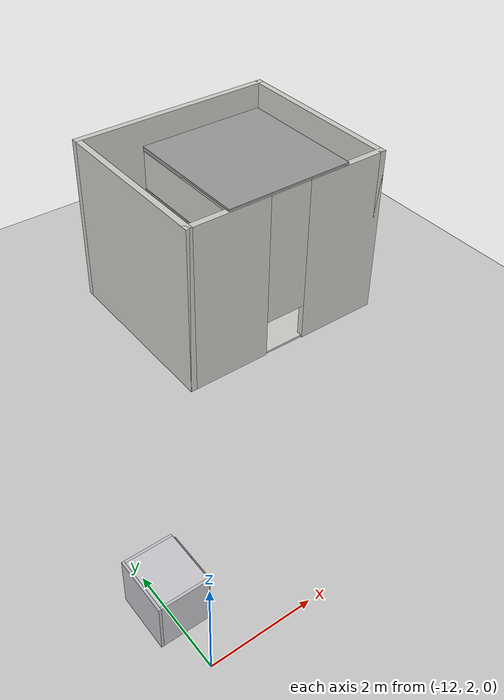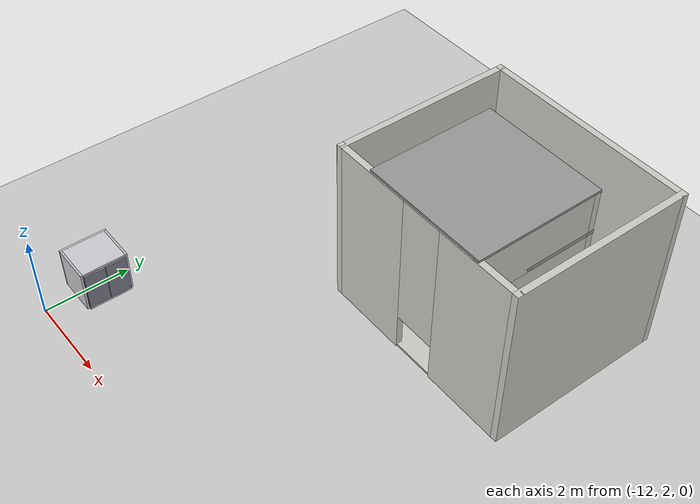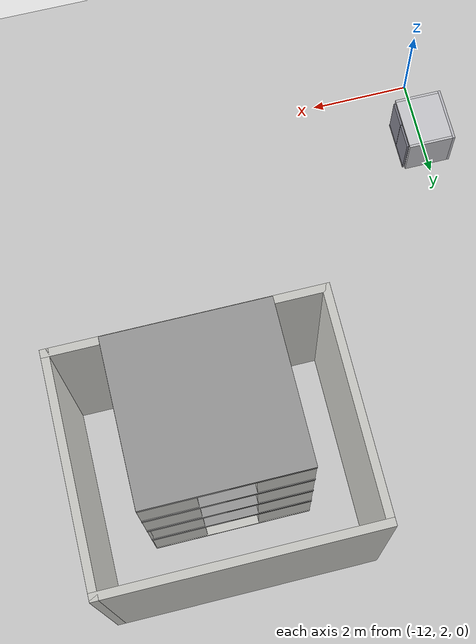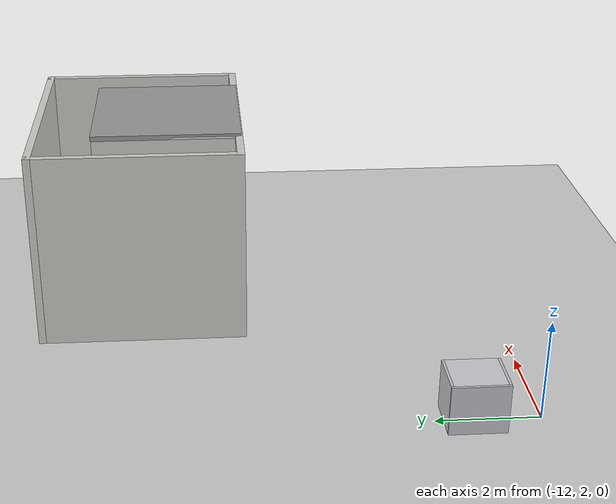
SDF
<sdf version="1.7">
 <world name="default">
  <model name="ground_plane">
   <static>1</static>
   <link name="link">
    <collision name="collision">
     <geometry><plane><normal>0 0 1</normal><size>100 100</size></plane></geometry>
     <surface><friction><ode><mu>100</mu><mu2>50</mu2></ode></friction></surface>
    </collision>
    <visual name="visual">
     <cast_shadows>0</cast_shadows>
     <geometry><plane><normal>0 0 1</normal><size>100 100</size></plane></geometry>
     <material>
      <script><uri>file://media/materials/scripts/gazebo.material</uri><name>Gazebo/Grey</name></script>
     </material>
    </visual>
   </link>
   <pose>-9.56672 -8.6074 0 0 -0 0</pose>
  </model>
  <model name="apart2">
   <pose>-8.24836 6.92736 0 0 -0 3.14159</pose>
   <link name="Floor_10">
    <collision name="Floor_10_Collision">
     <geometry><box><size>3.005 3.015 0.1</size></box></geometry>
     <pose>0 0 0.05 0 -0 0</pose>
    </collision>
    <visual name="Floor_10_Visual">
     <pose>0 0 0.05 0 -0 0</pose>
     <geometry><box><size>3.005 3.015 0.1</size></box></geometry>
     <material>
      <script><uri>file://media/materials/scripts/gazebo.material</uri><name>Gazebo/Grey</name></script>
      <ambient>1 1 1 1</ambient>
     </material>
     <meta><layer>2</layer></meta>
    </visual>
    <pose>-1.995 -1.885 2 0 -0 0</pose>
   </link>
   <link name="Floor_11">
    <collision name="Floor_11_Collision">
     <geometry><box><size>3.005 3.015 0.1</size></box></geometry>
     <pose>0 0 0.05 0 -0 0</pose>
    </collision>
    <visual name="Floor_11_Visual">
     <pose>0 0 0.05 0 -0 0</pose>
     <geometry><box><size>3.005 3.015 0.1</size></box></geometry>
     <material>
      <script><uri>file://media/materials/scripts/gazebo.material</uri><name>Gazebo/Grey</name></script>
      <ambient>1 1 1 1</ambient>
     </material>
     <meta><layer>3</layer></meta>
    </visual>
    <pose>-1.995 -1.885 3 0 -0 0</pose>
   </link>
   <link name="Floor_12">
    <collision name="Floor_12_Collision">
     <geometry><box><size>3 3.01 0.1</size></box></geometry>
     <pose>0 0 0.05 0 -0 0</pose>
    </collision>
    <visual name="Floor_12_Visual">
     <pose>0 0 0.05 0 -0 0</pose>
     <geometry><box><size>3 3.01 0.1</size></box></geometry>
     <material>
      <script><uri>file://media/materials/scripts/gazebo.material</uri><name>Gazebo/Grey</name></script>
      <ambient>1 1 1 1</ambient>
     </material>
     <meta><layer>4</layer></meta>
    </visual>
    <pose>-1.9925 -1.8875 4 0 -0 0</pose>
   </link>
   <link name="Floor_9">
    <collision name="Floor_9_Collision">
     <geometry><box><size>3.005 3.015 0.1</size></box></geometry>
     <pose>0 0 0.05 0 -0 0</pose>
    </collision>
    <visual name="Floor_9_Visual">
     <pose>0 0 0.05 0 -0 0</pose>
     <geometry><box><size>3.005 3.015 0.1</size></box></geometry>
     <material>
      <script><uri>file://media/materials/scripts/gazebo.material</uri><name>Gazebo/Grey</name></script>
      <ambient>1 1 1 1</ambient>
     </material>
     <meta><layer>1</layer></meta>
    </visual>
    <pose>-1.995 -1.885 1 0 -0 0</pose>
   </link>
   <link name="Wall_100">
    <collision name="Wall_100_Collision">
     <geometry><box><size>3 0.15 1.05</size></box></geometry>
     <pose>0 0 0.525 0 -0 0</pose>
    </collision>
    <visual name="Wall_100_Visual">
     <pose>0 0 0.525 0 -0 0</pose>
     <geometry><box><size>3 0.15 1.05</size></box></geometry>
     <material>
      <script><uri>file://media/materials/scripts/gazebo.material</uri><name>Gazebo/CeilingTiled</name></script>
      <ambient>1 1 1 1</ambient>
     </material>
     <meta><layer>3</layer></meta>
    </visual>
    <pose>-0.5725 -1.8775 3 0 -0 1.5708</pose>
   </link>
   <link name="Wall_101">
    <collision name="Wall_101_Collision">
     <geometry><box><size>3 0.15 1.05</size></box></geometry>
     <pose>0 0 0.525 0 -0 0</pose>
    </collision>
    <visual name="Wall_101_Visual">
     <pose>0 0 0.525 0 -0 0</pose>
     <geometry><box><size>3 0.15 1.05</size></box></geometry>
     <material>
      <script><uri>file://media/materials/scripts/gazebo.material</uri><name>Gazebo/CeilingTiled</name></script>
      <ambient>1 1 1 1</ambient>
     </material>
     <meta><layer>3</layer></meta>
    </visual>
    <pose>-3.4225 -1.8775 3 0 -0 1.5708</pose>
   </link>
   <link name="Wall_102">
    <collision name="Wall_102_Collision">
     <geometry><box><size>1 0.15 1.05</size></box></geometry>
     <pose>0 0 0.525 0 -0 0</pose>
    </collision>
    <visual name="Wall_102_Visual">
     <pose>0 0 0.525 0 -0 0</pose>
     <geometry><box><size>1 0.15 1.05</size></box></geometry>
     <material>
      <script><uri>file://media/materials/scripts/gazebo.material</uri><name>Gazebo/CeilingTiled</name></script>
      <ambient>1 1 1 1</ambient>
     </material>
     <meta><layer>3</layer></meta>
    </visual>
    <pose>-2.9975 -3.3025 3 0 -0 0</pose>
   </link>
   <link name="Wall_103">
    <collision name="Wall_103_Collision">
     <geometry><box><size>1 0.15 1.05</size></box></geometry>
     <pose>0 0 0.525 0 -0 0</pose>
    </collision>
    <visual name="Wall_103_Visual">
     <pose>0 0 0.525 0 -0 0</pose>
     <geometry><box><size>1 0.15 1.05</size></box></geometry>
     <material>
      <script><uri>file://media/materials/scripts/gazebo.material</uri><name>Gazebo/CeilingTiled</name></script>
      <ambient>1 1 1 1</ambient>
     </material>
     <meta><layer>3</layer></meta>
    </visual>
    <pose>-0.9975 -3.3025 3 0 -0 3.14159</pose>
   </link>
   <link name="Wall_104">
    <collision name="Wall_104_Collision">
     <geometry><box><size>3.01 3 0.05</size></box></geometry>
     <pose>0 0 0.025 0 -0 0</pose>
    </collision>
    <visual name="Wall_104_Visual">
     <pose>0 0 0.025 0 -0 0</pose>
     <geometry><box><size>3.01 3 0.05</size></box></geometry>
     <material>
      <script><uri>file://media/materials/scripts/gazebo.material</uri><name>Gazebo/CeilingTiled</name></script>
      <ambient>1 1 1 1</ambient>
     </material>
     <meta><layer>4</layer></meta>
    </visual>
    <pose>-1.9925 -1.8875 4 0 -0 -1.5708</pose>
   </link>
   <link name="Wall_117">
    <pose>-1.9975 -0.4325 0 0 -0 0</pose>
    <visual name="Wall_117_Visual_0">
     <pose>-1.4975 0 2.025 0 -0 0</pose>
     <geometry><box><size>2.005 0.15 4.05</size></box></geometry>
     <material>
      <script><uri>file://media/materials/scripts/gazebo.material</uri><name>Gazebo/CeilingTiled</name></script>
      <ambient>0.760784 0.662745 0.627451 1</ambient>
     </material>
     <meta><layer>0</layer></meta>
    </visual>
    <collision name="Wall_117_Collision_0">
     <geometry><box><size>2.005 0.15 4.05</size></box></geometry>
     <pose>-1.4975 0 2.025 0 -0 0</pose>
    </collision>
    <visual name="Wall_117_Visual_1">
     <pose>1.5025 0 2.025 0 -0 0</pose>
     <geometry><box><size>1.995 0.15 4.05</size></box></geometry>
     <material>
      <script><uri>file://media/materials/scripts/gazebo.material</uri><name>Gazebo/CeilingTiled</name></script>
      <ambient>0.760784 0.662745 0.627451 1</ambient>
     </material>
     <meta><layer>0</layer></meta>
    </visual>
    <collision name="Wall_117_Collision_1">
     <geometry><box><size>1.995 0.15 4.05</size></box></geometry>
     <pose>1.5025 0 2.025 0 -0 0</pose>
    </collision>
    <visual name="Wall_117_Visual_2">
     <pose>0.005 0 2.475 0 -0 0</pose>
     <geometry><box><size>1 0.15 3.15</size></box></geometry>
     <material>
      <script><uri>file://media/materials/scripts/gazebo.material</uri><name>Gazebo/CeilingTiled</name></script>
      <ambient>0.760784 0.662745 0.627451 1</ambient>
     </material>
     <meta><layer>0</layer></meta>
    </visual>
    <collision name="Wall_117_Collision_2">
     <geometry><box><size>1 0.15 3.15</size></box></geometry>
     <pose>0.005 0 2.475 0 -0 0</pose>
    </collision>
   </link>
   <link name="Wall_118">
    <collision name="Wall_118_Collision">
     <geometry><box><size>4.25 0.15 4.05</size></box></geometry>
     <pose>0 0 2.025 0 -0 0</pose>
    </collision>
    <visual name="Wall_118_Visual">
     <pose>0 0 2.025 0 -0 0</pose>
     <geometry><box><size>4.25 0.15 4.05</size></box></geometry>
     <material>
      <script><uri>file://media/materials/scripts/gazebo.material</uri><name>Gazebo/CeilingTiled</name></script>
      <ambient>0.760784 0.662745 0.627451 1</ambient>
     </material>
     <meta><layer>0</layer></meta>
    </visual>
    <pose>0.4275 -2.4825 0 0 -0 -1.5708</pose>
   </link>
   <link name="Wall_119">
    <collision name="Wall_119_Collision">
     <geometry><box><size>5 0.15 4.05</size></box></geometry>
     <pose>0 0 2.025 0 -0 0</pose>
    </collision>
    <visual name="Wall_119_Visual">
     <pose>0 0 2.025 0 -0 0</pose>
     <geometry><box><size>5 0.15 4.05</size></box></geometry>
     <material>
      <script><uri>file://media/materials/scripts/gazebo.material</uri><name>Gazebo/CeilingTiled</name></script>
      <ambient>0.760784 0.662745 0.627451 1</ambient>
     </material>
     <meta><layer>0</layer></meta>
    </visual>
    <pose>-1.9975 -4.5325 0 0 -0 3.14159</pose>
   </link>
   <link name="Wall_120">
    <collision name="Wall_120_Collision">
     <geometry><box><size>4.25 0.15 4.05</size></box></geometry>
     <pose>0 0 2.025 0 -0 0</pose>
    </collision>
    <visual name="Wall_120_Visual">
     <pose>0 0 2.025 0 -0 0</pose>
     <geometry><box><size>4.25 0.15 4.05</size></box></geometry>
     <material>
      <script><uri>file://media/materials/scripts/gazebo.material</uri><name>Gazebo/CeilingTiled</name></script>
      <ambient>0.760784 0.662745 0.627451 1</ambient>
     </material>
     <meta><layer>0</layer></meta>
    </visual>
    <pose>-4.4225 -2.4825 0 0 -0 1.5708</pose>
   </link>
   <link name="Wall_71">
    <collision name="Wall_71_Collision">
     <geometry><box><size>3.01 3 0.05</size></box></geometry>
     <pose>0 0 0.025 0 -0 0</pose>
    </collision>
    <visual name="Wall_71_Visual">
     <pose>0 0 0.025 0 -0 0</pose>
     <geometry><box><size>3.01 3 0.05</size></box></geometry>
     <material>
      <script><uri>file://media/materials/scripts/gazebo.material</uri><name>Gazebo/CeilingTiled</name></script>
      <ambient>1 1 1 1</ambient>
     </material>
     <meta><layer>0</layer></meta>
    </visual>
    <pose>-1.9925 -1.8875 0 0 -0 -1.5708</pose>
   </link>
   <link name="Wall_73">
    <collision name="Wall_73_Collision">
     <geometry><box><size>3 0.15 1</size></box></geometry>
     <pose>0 0 0.5 0 -0 0</pose>
    </collision>
    <visual name="Wall_73_Visual">
     <pose>0 0 0.5 0 -0 0</pose>
     <geometry><box><size>3 0.15 1</size></box></geometry>
     <material>
      <script><uri>file://media/materials/scripts/gazebo.material</uri><name>Gazebo/CeilingTiled</name></script>
      <ambient>1 1 1 1</ambient>
     </material>
     <meta><layer>0</layer></meta>
    </visual>
    <pose>-0.5725 -1.8775 0 0 -0 1.5708</pose>
   </link>
   <link name="Wall_75">
    <collision name="Wall_75_Collision">
     <geometry><box><size>3 0.15 1</size></box></geometry>
     <pose>0 0 0.5 0 -0 0</pose>
    </collision>
    <visual name="Wall_75_Visual">
     <pose>0 0 0.5 0 -0 0</pose>
     <geometry><box><size>3 0.15 1</size></box></geometry>
     <material>
      <script><uri>file://media/materials/scripts/gazebo.material</uri><name>Gazebo/CeilingTiled</name></script>
      <ambient>1 1 1 1</ambient>
     </material>
     <meta><layer>0</layer></meta>
    </visual>
    <pose>-3.4225 -1.8775 0 0 -0 1.5708</pose>
   </link>
   <link name="Wall_85">
    <collision name="Wall_85_Collision">
     <geometry><box><size>1 0.15 1</size></box></geometry>
     <pose>0 0 0.5 0 -0 0</pose>
    </collision>
    <visual name="Wall_85_Visual">
     <pose>0 0 0.5 0 -0 0</pose>
     <geometry><box><size>1 0.15 1</size></box></geometry>
     <material>
      <script><uri>file://media/materials/scripts/gazebo.material</uri><name>Gazebo/CeilingTiled</name></script>
      <ambient>1 1 1 1</ambient>
     </material>
     <meta><layer>0</layer></meta>
    </visual>
    <pose>-2.9975 -3.3025 0 0 -0 0</pose>
   </link>
   <link name="Wall_87">
    <collision name="Wall_87_Collision">
     <geometry><box><size>1 0.15 1</size></box></geometry>
     <pose>0 0 0.5 0 -0 0</pose>
    </collision>
    <visual name="Wall_87_Visual">
     <pose>0 0 0.5 0 -0 0</pose>
     <geometry><box><size>1 0.15 1</size></box></geometry>
     <material>
      <script><uri>file://media/materials/scripts/gazebo.material</uri><name>Gazebo/CeilingTiled</name></script>
      <ambient>1 1 1 1</ambient>
     </material>
     <meta><layer>0</layer></meta>
    </visual>
    <pose>-0.9975 -3.3025 0 0 -0 3.14159</pose>
   </link>
   <link name="Wall_89">
    <collision name="Wall_89_Collision">
     <geometry><box><size>3.01 3 0.05</size></box></geometry>
     <pose>0 0 0.025 0 -0 0</pose>
    </collision>
    <visual name="Wall_89_Visual">
     <pose>0 0 0.025 0 -0 0</pose>
     <geometry><box><size>3.01 3 0.05</size></box></geometry>
     <material>
      <script><uri>file://media/materials/scripts/gazebo.material</uri><name>Gazebo/CeilingTiled</name></script>
      <ambient>1 1 1 1</ambient>
     </material>
     <meta><layer>1</layer></meta>
    </visual>
    <pose>-1.9925 -1.8875 1 0 -0 -1.5708</pose>
   </link>
   <link name="Wall_90">
    <collision name="Wall_90_Collision">
     <geometry><box><size>3 0.15 1</size></box></geometry>
     <pose>0 0 0.5 0 -0 0</pose>
    </collision>
    <visual name="Wall_90_Visual">
     <pose>0 0 0.5 0 -0 0</pose>
     <geometry><box><size>3 0.15 1</size></box></geometry>
     <material>
      <script><uri>file://media/materials/scripts/gazebo.material</uri><name>Gazebo/CeilingTiled</name></script>
      <ambient>1 1 1 1</ambient>
     </material>
     <meta><layer>1</layer></meta>
    </visual>
    <pose>-0.5725 -1.8775 1 0 -0 1.5708</pose>
   </link>
   <link name="Wall_91">
    <collision name="Wall_91_Collision">
     <geometry><box><size>3 0.15 1</size></box></geometry>
     <pose>0 0 0.5 0 -0 0</pose>
    </collision>
    <visual name="Wall_91_Visual">
     <pose>0 0 0.5 0 -0 0</pose>
     <geometry><box><size>3 0.15 1</size></box></geometry>
     <material>
      <script><uri>file://media/materials/scripts/gazebo.material</uri><name>Gazebo/CeilingTiled</name></script>
      <ambient>1 1 1 1</ambient>
     </material>
     <meta><layer>1</layer></meta>
    </visual>
    <pose>-3.4225 -1.8775 1 0 -0 1.5708</pose>
   </link>
   <link name="Wall_92">
    <collision name="Wall_92_Collision">
     <geometry><box><size>1 0.15 1</size></box></geometry>
     <pose>0 0 0.5 0 -0 0</pose>
    </collision>
    <visual name="Wall_92_Visual">
     <pose>0 0 0.5 0 -0 0</pose>
     <geometry><box><size>1 0.15 1</size></box></geometry>
     <material>
      <script><uri>file://media/materials/scripts/gazebo.material</uri><name>Gazebo/CeilingTiled</name></script>
      <ambient>1 1 1 1</ambient>
     </material>
     <meta><layer>1</layer></meta>
    </visual>
    <pose>-2.9975 -3.3025 1 0 -0 0</pose>
   </link>
   <link name="Wall_93">
    <collision name="Wall_93_Collision">
     <geometry><box><size>1 0.15 1</size></box></geometry>
     <pose>0 0 0.5 0 -0 0</pose>
    </collision>
    <visual name="Wall_93_Visual">
     <pose>0 0 0.5 0 -0 0</pose>
     <geometry><box><size>1 0.15 1</size></box></geometry>
     <material>
      <script><uri>file://media/materials/scripts/gazebo.material</uri><name>Gazebo/CeilingTiled</name></script>
      <ambient>1 1 1 1</ambient>
     </material>
     <meta><layer>1</layer></meta>
    </visual>
    <pose>-0.9975 -3.3025 1 0 -0 3.14159</pose>
   </link>
   <link name="Wall_94">
    <collision name="Wall_94_Collision">
     <geometry><box><size>3.01 3 0.05</size></box></geometry>
     <pose>0 0 0.025 0 -0 0</pose>
    </collision>
    <visual name="Wall_94_Visual">
     <pose>0 0 0.025 0 -0 0</pose>
     <geometry><box><size>3.01 3 0.05</size></box></geometry>
     <material>
      <script><uri>file://media/materials/scripts/gazebo.material</uri><name>Gazebo/CeilingTiled</name></script>
      <ambient>1 1 1 1</ambient>
     </material>
     <meta><layer>2</layer></meta>
    </visual>
    <pose>-1.9925 -1.8875 2 0 -0 -1.5708</pose>
   </link>
   <link name="Wall_95">
    <collision name="Wall_95_Collision">
     <geometry><box><size>3 0.15 1</size></box></geometry>
     <pose>0 0 0.5 0 -0 0</pose>
    </collision>
    <visual name="Wall_95_Visual">
     <pose>0 0 0.5 0 -0 0</pose>
     <geometry><box><size>3 0.15 1</size></box></geometry>
     <material>
      <script><uri>file://media/materials/scripts/gazebo.material</uri><name>Gazebo/CeilingTiled</name></script>
      <ambient>1 1 1 1</ambient>
     </material>
     <meta><layer>2</layer></meta>
    </visual>
    <pose>-0.5725 -1.8775 2 0 -0 1.5708</pose>
   </link>
   <link name="Wall_96">
    <collision name="Wall_96_Collision">
     <geometry><box><size>3 0.15 1</size></box></geometry>
     <pose>0 0 0.5 0 -0 0</pose>
    </collision>
    <visual name="Wall_96_Visual">
     <pose>0 0 0.5 0 -0 0</pose>
     <geometry><box><size>3 0.15 1</size></box></geometry>
     <material>
      <script><uri>file://media/materials/scripts/gazebo.material</uri><name>Gazebo/CeilingTiled</name></script>
      <ambient>1 1 1 1</ambient>
     </material>
     <meta><layer>2</layer></meta>
    </visual>
    <pose>-3.4225 -1.8775 2 0 -0 1.5708</pose>
   </link>
   <link name="Wall_97">
    <collision name="Wall_97_Collision">
     <geometry><box><size>1 0.15 1</size></box></geometry>
     <pose>0 0 0.5 0 -0 0</pose>
    </collision>
    <visual name="Wall_97_Visual">
     <pose>0 0 0.5 0 -0 0</pose>
     <geometry><box><size>1 0.15 1</size></box></geometry>
     <material>
      <script><uri>file://media/materials/scripts/gazebo.material</uri><name>Gazebo/CeilingTiled</name></script>
      <ambient>1 1 1 1</ambient>
     </material>
     <meta><layer>2</layer></meta>
    </visual>
    <pose>-2.9975 -3.3025 2 0 -0 0</pose>
   </link>
   <link name="Wall_98">
    <collision name="Wall_98_Collision">
     <geometry><box><size>1 0.15 1</size></box></geometry>
     <pose>0 0 0.5 0 -0 0</pose>
    </collision>
    <visual name="Wall_98_Visual">
     <pose>0 0 0.5 0 -0 0</pose>
     <geometry><box><size>1 0.15 1</size></box></geometry>
     <material>
      <script><uri>file://media/materials/scripts/gazebo.material</uri><name>Gazebo/CeilingTiled</name></script>
      <ambient>1 1 1 1</ambient>
     </material>
     <meta><layer>2</layer></meta>
    </visual>
    <pose>-0.9975 -3.3025 2 0 -0 3.14159</pose>
   </link>
   <link name="Wall_99">
    <collision name="Wall_99_Collision">
     <geometry><box><size>3.01 3 0.05</size></box></geometry>
     <pose>0 0 0.025 0 -0 0</pose>
    </collision>
    <visual name="Wall_99_Visual">
     <pose>0 0 0.025 0 -0 0</pose>
     <geometry><box><size>3.01 3 0.05</size></box></geometry>
     <material>
      <script><uri>file://media/materials/scripts/gazebo.material</uri><name>Gazebo/CeilingTiled</name></script>
      <ambient>1 1 1 1</ambient>
     </material>
     <meta><layer>3</layer></meta>
    </visual>
    <pose>-1.9925 -1.8875 3 0 -0 -1.5708</pose>
   </link>
   <static>1</static>
  </model>
  <model name="elevator3">
   <pose>-11.9478 3.28268 -0 -0 -0 -1.57079</pose>
   <static>0</static>
   <link name="floor">
    <pose>0 0 0.025 0 -0 0</pose>
    <visual name="floor_v">
     <geometry><box><size>1 0.9 0.05</size></box></geometry>
     <material>
      <ambient>0.12 0.12 0.12 1</ambient>
      <diffuse>0.24 0.24 0.25 1</diffuse>
      <specular>0.2 0.2 0.2 1</specular>
      <emissive>0 0 0 1</emissive>
      <lighting>1</lighting>
     </material>
    </visual>
    <collision name="floor_c"><geometry><box><size>1 0.9 0.05</size></box></geometry></collision>
    <inertial>
     <mass>5</mass>
     <inertia><ixx>1</ixx><ixy>0</ixy><ixz>0</ixz><iyy>1</iyy><iyz>0</iyz><izz>1</izz></inertia>
    </inertial>
   </link>
   <link name="ceiling">
    <pose>0 0 0.975 0 -0 0</pose>
    <visual name="ceiling_v">
     <geometry><box><size>1 0.9 0.05</size></box></geometry>
     <material>
      <ambient>0.4 0.4 0.42 1</ambient>
      <diffuse>0.8 0.8 0.82 1</diffuse>
      <specular>0.5 0.5 0.5 1</specular>
      <emissive>0 0 0 1</emissive>
      <lighting>1</lighting>
     </material>
    </visual>
    <collision name="ceiling_c"><geometry><box><size>1 0.9 0.05</size></box></geometry></collision>
    <inertial>
     <mass>5</mass>
     <inertia><ixx>1</ixx><ixy>0</ixy><ixz>0</ixz><iyy>1</iyy><iyz>0</iyz><izz>1</izz></inertia>
    </inertial>
   </link>
   <link name="wall_back">
    <pose>0 -0.475 0.5 0 -0 0</pose>
    <visual name="wall_back_v">
     <geometry><box><size>1.1 0.05 1</size></box></geometry>
     <material>
      <ambient>0.35 0.35 0.37 1</ambient>
      <diffuse>0.75 0.75 0.78 1</diffuse>
      <specular>0.6 0.6 0.6 1</specular>
      <emissive>0 0 0 1</emissive>
      <lighting>1</lighting>
     </material>
    </visual>
    <collision name="wall_back_c"><geometry><box><size>1.1 0.05 1</size></box></geometry></collision>
    <inertial>
     <mass>8</mass>
     <inertia><ixx>1</ixx><ixy>0</ixy><ixz>0</ixz><iyy>1</iyy><iyz>0</iyz><izz>1</izz></inertia>
    </inertial>
   </link>
   <link name="wall_left">
    <pose>-0.525 0 0.5 0 -0 0</pose>
    <visual name="wall_left_v">
     <geometry><box><size>0.05 0.9 1</size></box></geometry>
     <material>
      <ambient>0.38 0.38 0.4 1</ambient>
      <diffuse>0.78 0.78 0.8 1</diffuse>
      <specular>0.55 0.55 0.55 1</specular>
      <emissive>0 0 0 1</emissive>
      <lighting>1</lighting>
     </material>
    </visual>
    <collision name="wall_left_c"><geometry><box><size>0.05 0.9 1</size></box></geometry></collision>
    <inertial>
     <mass>7.7</mass>
     <inertia><ixx>1</ixx><ixy>0</ixy><ixz>0</ixz><iyy>1</iyy><iyz>0</iyz><izz>1</izz></inertia>
    </inertial>
   </link>
   <link name="wall-right">
    <pose>0.525 0 0.5 0 -0 0</pose>
    <visual name="wall_right_v">
     <geometry><box><size>0.05 0.9 1</size></box></geometry>
     <material>
      <ambient>0.38 0.38 0.4 1</ambient>
      <diffuse>0.78 0.78 0.8 1</diffuse>
      <specular>0.55 0.55 0.55 1</specular>
      <emissive>0 0 0 1</emissive>
      <lighting>1</lighting>
     </material>
    </visual>
    <collision name="wall_right_c"><geometry><box><size>0.05 0.9 1</size></box></geometry></collision>
    <inertial>
     <mass>7.7</mass>
     <inertia><ixx>1</ixx><ixy>0</ixy><ixz>0</ixz><iyy>1</iyy><iyz>0</iyz><izz>1</izz></inertia>
    </inertial>
   </link>
   <link name="lift">
    <inertial>
     <mass>12</mass>
     <inertia><ixx>1</ixx><ixy>0</ixy><ixz>0</ixz><iyy>1</iyy><iyz>0</iyz><izz>1</izz></inertia>
    </inertial>
   </link>
   <joint name="fix_floor" type="fixed"><parent>lift</parent><child>floor</child></joint>
   <joint name="fix_ceiling" type="fixed"><parent>lift</parent><child>ceiling</child></joint>
   <joint name="fix_back" type="fixed"><parent>lift</parent><child>wall_back</child></joint>
   <joint name="fix_left" type="fixed"><parent>lift</parent><child>wall_left</child></joint>
   <joint name="fix_right" type="fixed"><parent>lift</parent><child>wall-right</child></joint>
   <link name="door_left">
    <pose>-0.25 0.475 0.5 0 -0 0</pose>
    <visual name="door_left_v">
     <geometry><box><size>0.49 0.04 0.9</size></box></geometry>
     <material>
      <ambient>0.2 0.2 0.22 1</ambient>
      <diffuse>0.5 0.5 0.55 1</diffuse>
      <specular>0.9 0.9 0.9 1</specular>
      <emissive>0 0 0 1</emissive>
      <lighting>1</lighting>
     </material>
    </visual>
    <collision name="door_left_c"><geometry><box><size>0.49 0.04 0.9</size></box></geometry></collision>
    <inertial>
     <mass>4</mass>
     <inertia><ixx>1</ixx><ixy>0</ixy><ixz>0</ixz><iyy>1</iyy><iyz>0</iyz><izz>1</izz></inertia>
    </inertial>
   </link>
   <link name="door_right">
    <pose>0.25 0.475 0.5 0 -0 0</pose>
    <visual name="door_right_v">
     <geometry><box><size>0.49 0.04 0.9</size></box></geometry>
     <material>
      <ambient>0.2 0.2 0.22 1</ambient>
      <diffuse>0.5 0.5 0.55 1</diffuse>
      <specular>0.9 0.9 0.9 1</specular>
      <emissive>0 0 0 1</emissive>
      <lighting>1</lighting>
     </material>
    </visual>
    <collision name="door_right_c"><geometry><box><size>0.49 0.04 0.9</size></box></geometry></collision>
    <inertial>
     <mass>4</mass>
     <inertia><ixx>1</ixx><ixy>0</ixy><ixz>0</ixz><iyy>1</iyy><iyz>0</iyz><izz>1</izz></inertia>
    </inertial>
   </link>
   <joint name="lift_joint" type="prismatic">
    <parent>world</parent>
    <child>lift</child>
    <axis>
     <xyz>0 0 1</xyz>
     <limit><lower>0</lower><upper>3</upper></limit>
     <dynamics><spring_reference>0</spring_reference><spring_stiffness>0</spring_stiffness></dynamics>
    </axis>
   </joint>
   <joint name="door_left_joint" type="prismatic">
    <parent>lift</parent>
    <child>door_left</child>
    <axis>
     <xyz>1 0 0</xyz>
     <limit><lower>-0.5</lower><upper>0</upper></limit>
     <dynamics><spring_reference>0</spring_reference><spring_stiffness>0</spring_stiffness></dynamics>
    </axis>
   </joint>
   <joint name="door_right_joint" type="prismatic">
    <parent>lift</parent>
    <child>door_right</child>
    <axis>
     <xyz>-1 0 0</xyz>
     <limit><lower>-0.5</lower><upper>0</upper></limit>
     <dynamics><spring_reference>0</spring_reference><spring_stiffness>0</spring_stiffness></dynamics>
    </axis>
   </joint>
   <link name="door_sill">
    <pose>0 0.475 0.025 0 -0 0</pose>
    <visual name="door_sill_v">
     <geometry><box><size>1 0.05 0.05</size></box></geometry>
     <material>
      <ambient>0.38 0.38 0.4 1</ambient>
      <diffuse>0.78 0.78 0.8 1</diffuse>
      <specular>0.55 0.55 0.55 1</specular>
      <emissive>0 0 0 1</emissive>
      <lighting>1</lighting>
     </material>
    </visual>
    <collision name="door_sill_c"><geometry><box><size>1 0.05 0.05</size></box></geometry></collision>
    <inertial>
     <mass>1</mass>
     <inertia><ixx>1</ixx><ixy>0</ixy><ixz>0</ixz><iyy>1</iyy><iyz>0</iyz><izz>1</izz></inertia>
    </inertial>
   </link>
   <joint name="fix_sill" type="fixed"><parent>lift</parent><child>door_sill</child></joint>
   <plugin name="elevator_controller3" filename="libElevatorRos2Plugin.so">
    <ros><namespace>/elevator_1</namespace></ros>
   </plugin>
   <plugin name="elevator_coordinator_3" filename="libCoordinatorRos2Plugin.so">
    <elevator_ns>elevator_1</elevator_ns>
    <ros><namespace>elevator_1</namespace></ros>
   </plugin>
  </model>
 </world>
</sdf>
